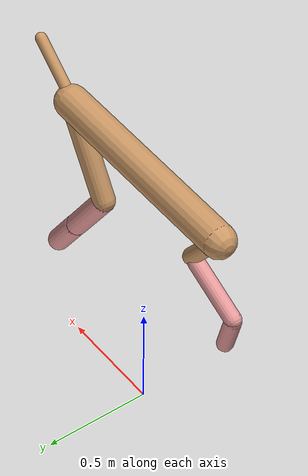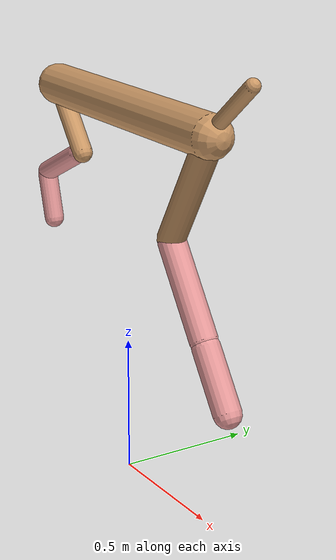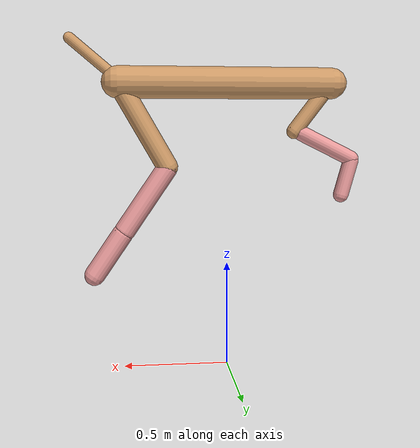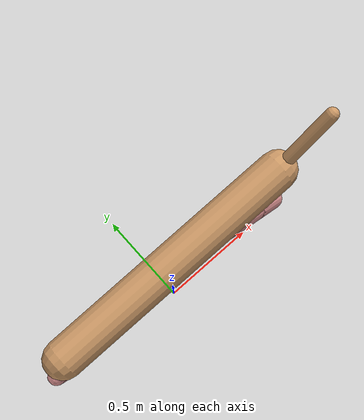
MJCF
<mujoco model="cheetah">
  <compiler angle="radian" coordinate="local" inertiafromgeom="true" settotalmass="14" />
  <default>
    <joint armature=".1" damping=".01" limited="true" solimplimit="0 .8 .03" solreflimit=".02 1" stiffness="8" />
    <geom conaffinity="0" condim="3" contype="1" friction="0.8 .1 .1" rgba="0.8 0.6 .4 1" solimp="0.0 0.8 0.01" solref="0.02 1" />
    <motor ctrllimited="true" ctrlrange="-1 1" />
  </default>
  <size nstack="300000" nuser_geom="1" />
  <option gravity="0 0 -9.81" timestep="0.01" />
  <worldbody>
    <body name="torso" pos="0.0 0.0 1.364513151765276">
      <joint armature="0" axis="1 0 0" damping="0" limited="false" name="ignorex" pos="0 0 0" stiffness="0" type="slide" />
      <joint armature="0" axis="0 0 1" damping="0" limited="false" name="ignorez" pos="0 0 0" stiffness="0" type="slide" />
      <joint armature="0" axis="0 1 0" damping="0" limited="false" name="ignorey" pos="0 0 0" stiffness="0" type="hinge" />
      <geom fromto="-0.5 0.0 0.0 0.5138370578184344 0.0 0.0" name="torso" size="0.0753352092908486" type="capsule" />
      <geom axisangle="0 1 0 .87" name="head" pos="0.6138370578184343 0.0 0.1" size="0.025829708861924146 0.15" type="capsule" />

      <body name="bthigh" pos="-.5 0 0">
        <joint axis="0 1 0" damping="6" name="bthigh" pos="0 0 0" range="-.52 1.05" stiffness="240" type="hinge" />
        <geom axisangle="0 1 0 -3.8" name="bthigh" pos="0.09333364284039838 0.0 -0.1213337356925179" size="0.03709923373255403 0.13406636131809221" type="capsule" />
        <body name="bshin" pos="0.14666728568079676 0.0 -0.2326674713850358">
          <joint axis="0 1 0" damping="4.5" name="bshin" pos="0 0 0" range="-.785 .785" stiffness="180" type="hinge" />
          <geom axisangle="0 1 0 -2.03" name="bshin" pos="-0.12988343751689643 0.0 -0.06494171875844822" rgba="0.9 0.6 0.6 1" size="0.03709923373255403 0.13868933929457816" type="capsule" />
          <body name="bfoot" pos="-0.25976687503379287 0.0 -0.12988343751689643">
            <joint axis="0 1 0" damping="3" name="bfoot" pos="0 0 0" range="-.4 .785" stiffness="120" type="hinge" />
            <geom axisangle="0 1 0 -.27" name="bfoot" pos="0.027905706454923518 0.0 -0.09022845087091938" rgba="0.9 0.6 0.6 1" size="0.03709923373255403 0.08691198595793564" type="capsule" />
            <inertial mass="10" />
          </body>
        </body>
      </body>
      <body name="fthigh" pos="0.5138370578184344 0.0 0.0">
        <joint axis="0 1 0" damping="4.5" name="fthigh" pos="0 0 0" range="-1.5 0.8" stiffness="180" type="hinge" />
        <geom axisangle="0 1 0 .52" name="fthigh" pos="-0.11658184810963415 0.0 -0.19985459675937278" size="0.04980105628417413 0.22544795939830722" type="capsule" />
        <body name="fshin" pos="-0.2331636962192683 0.0 -0.39970919351874556">
          <joint axis="0 1 0" damping="3" name="fshin" pos="0 0 0" range="-1.2 1.1" stiffness="120" type="hinge" />
          <geom axisangle="0 1 0 -.6" name="fshin" pos="0.10813913636608226 0.0 -0.14973111189149851" rgba="0.9 0.6 0.6 1" size="0.04980105628417413 0.17968032854301175" type="capsule" />
          <body name="ffoot" pos="0.21627827273216452 0.0 -0.29946222378299703">
            <joint axis="0 1 0" damping="1.5" name="ffoot" pos="0 0 0" range="-3.1 -0.3" stiffness="60" type="hinge" />
            <geom axisangle="0 1 0 -.6" name="ffoot" pos="0.07131154518214565 0.0 -0.11092907028333769" rgba="0.9 0.6 0.6 1" size="0.04980105628417413 0.11865682073595117" type="capsule" />
            <inertial mass="10" />
          </body>
        </body>
      </body>
    </body>
  </worldbody>
  <actuator>
    <motor gear="120" joint="bthigh" name="bthigh" />
    <motor gear="90" joint="bshin" name="bshin" />
    <motor gear="60" joint="bfoot" name="bfoot" />
    <motor gear="120" joint="fthigh" name="fthigh" />
    <motor gear="60" joint="fshin" name="fshin" />
    <motor gear="30" joint="ffoot" name="ffoot" />
  </actuator>
</mujoco>
